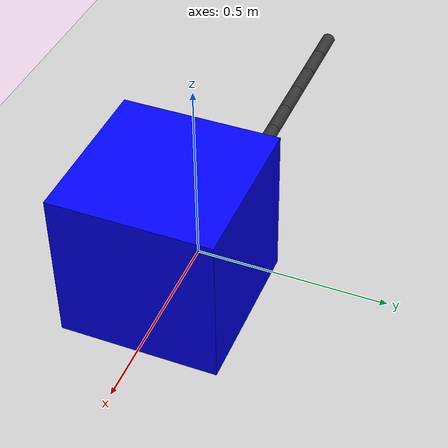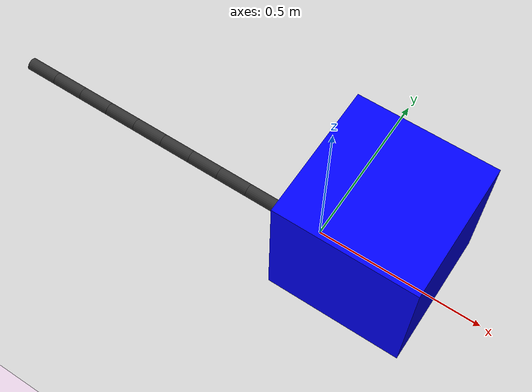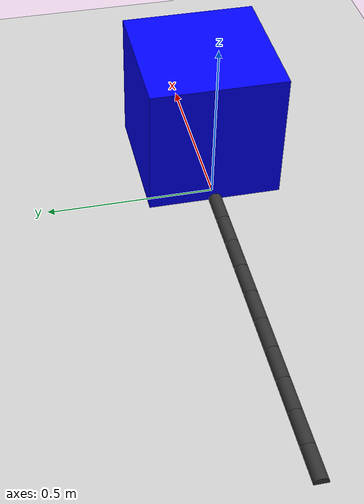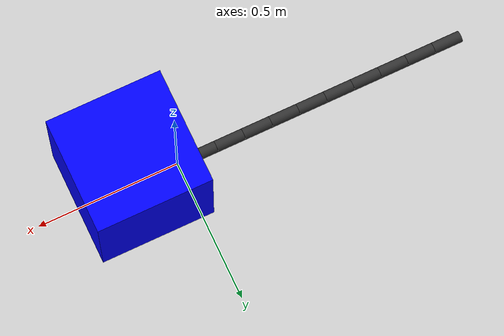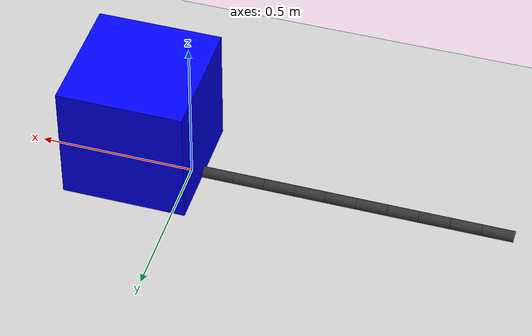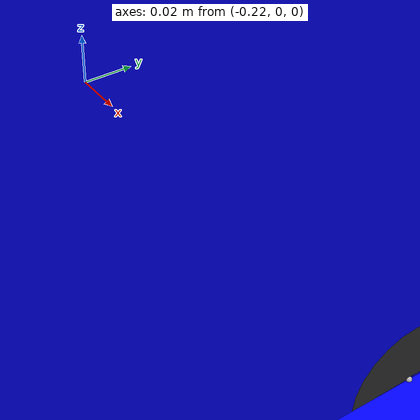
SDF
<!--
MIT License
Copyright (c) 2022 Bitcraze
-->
<sdf version="1.6">
 <world name="crazyflie_world">
  <physics name="1ms" type="ignored">
   <max_step_size>0.001</max_step_size>
   <real_time_factor>1.0</real_time_factor>
  </physics>
  <plugin filename="gz-sim-physics-system" name="gz::sim::systems::Physics"/>
  <plugin filename="gz-sim-user-commands-system" name="gz::sim::systems::UserCommands"/>
  <plugin filename="gz-sim-scene-broadcaster-system" name="gz::sim::systems::SceneBroadcaster"/>
  <plugin filename="gz-sim-sensors-system" name="gz::sim::systems::Sensors">
   <render_engine>ogre2</render_engine>
  </plugin>
  <light type="directional" name="sun">
   <pose>0 0 10 0 0 0</pose>
   <diffuse>0.8 0.8 0.8 1</diffuse>
   <specular>0.2 0.2 0.2 1</specular>
   <attenuation>
    <range>1000</range>
    <constant>0.9</constant>
    <linear>0.01</linear>
    <quadratic>0.001</quadratic>
   </attenuation>
   <direction>-0.5 0.1 -0.9</direction>
  </light>
  <model name="ground_plane">
   <static>true</static>
   <link name="link">
    <collision name="collision">
     <geometry><plane><normal>0 0 1</normal><size>100 100</size></plane></geometry>
    </collision>
    <visual name="visual">
     <geometry><plane><normal>0 0 1</normal><size>100 100</size></plane></geometry>
     <material>
      <ambient>0.8 0.8 0.8 1</ambient>
      <diffuse>0.8 0.8 0.8 1</diffuse>
      <specular>0.8 0.8 0.8 1</specular>
     </material>
    </visual>
   </link>
  </model>
  <include><uri>model://load</uri><name>the_load</name><pose>0.16 0 0 0 0 0</pose></include>
  <include><uri>model://small_segment</uri><name>segment_01</name><pose>-0.99 0 0 0 0 0</pose></include>
  <joint name="drone_to_cable_01" type="ball">
   <pose relative_to="crazyflie_01::hook_link">0 0 0 0 0 0</pose>
   <parent>crazyflie_01::hook_link</parent>
   <child>segment_01::segment_link</child>
   <axis><xyz>0 1 0</xyz></axis>
  </joint>
  <include><uri>model://small_segment</uri><name>segment_2</name><pose>-0.89 0 0 0 0 0</pose></include>
  <joint name="segment_01_to_2" type="ball">
   <pose relative_to="segment_01::segment_end">0 0 0 0 0 0</pose>
   <parent>segment_01::segment_end</parent>
   <child>segment_2::segment_link</child>
   <axis><xyz>0 1 0</xyz></axis>
  </joint>
  <include><uri>model://small_segment</uri><name>segment_3</name><pose>-0.79 0 0 0 0 0</pose></include>
  <joint name="segment_02_to_3" type="ball">
   <pose relative_to="segment_2::segment_end">0 0 0 0 0 0</pose>
   <parent>segment_2::segment_end</parent>
   <child>segment_3::segment_link</child>
   <axis><xyz>0 1 0</xyz></axis>
  </joint>
  <include><uri>model://small_segment</uri><name>segment_4</name><pose>-0.69 0 0 0 0 0</pose></include>
  <joint name="segment_3_to_4" type="ball">
   <pose relative_to="segment_3::segment_end">0 0 0 0 0 0</pose>
   <parent>segment_3::segment_end</parent>
   <child>segment_4::segment_link</child>
   <axis><xyz>0 1 0</xyz></axis>
  </joint>
  <include><uri>model://small_segment</uri><name>segment_5</name><pose>-0.59 0 0 0 0 0</pose></include>
  <joint name="segment_4_to_5" type="ball">
   <pose relative_to="segment_4::segment_end">0 0 0 0 0 0</pose>
   <parent>segment_4::segment_end</parent>
   <child>segment_5::segment_link</child>
   <axis><xyz>0 1 0</xyz></axis>
  </joint>
  <include><uri>model://small_segment</uri><name>segment_6</name><pose>-0.49 0 0 0 0 0</pose></include>
  <joint name="segment_5_to_6" type="ball">
   <pose relative_to="segment_5::segment_end">0 0 0 0 0 0</pose>
   <parent>segment_5::segment_end</parent>
   <child>segment_6::segment_link</child>
   <axis><xyz>0 1 0</xyz></axis>
  </joint>
  <include><uri>model://small_segment</uri><name>segment_7</name><pose>-0.39 0 0 0 0 0</pose></include>
  <joint name="segment_6_to_7" type="ball">
   <pose relative_to="segment_6::segment_end">0 0 0 0 0 0</pose>
   <parent>segment_6::segment_end</parent>
   <child>segment_7::segment_link</child>
   <axis><xyz>0 1 0</xyz></axis>
  </joint>
  <include><uri>model://small_segment</uri><name>segment_8</name><pose>-0.29 0 0 0 0 0</pose></include>
  <joint name="segment_7_to_8" type="ball">
   <pose relative_to="segment_7::segment_end">0 0 0 0 0 0</pose>
   <parent>segment_7::segment_end</parent>
   <child>segment_8::segment_link</child>
   <axis><xyz>0 1 0</xyz></axis>
  </joint>
  <include><uri>model://small_segment</uri><name>segment_9</name><pose>-0.19 0 0 0 0 0</pose></include>
  <joint name="segment_8_to_9" type="ball">
   <pose relative_to="segment_8::segment_end">0 0 0 0 0 0</pose>
   <parent>segment_8::segment_end</parent>
   <child>segment_9::segment_link</child>
   <axis><xyz>0 1 0</xyz></axis>
  </joint>
  <include><uri>model://small_segment</uri><name>segment_10</name><pose>-0.09 0 0 0 0 0</pose></include>
  <joint name="segment_9_to_10" type="ball">
   <pose relative_to="segment_9::segment_end">0 0 0 0 0 0</pose>
   <parent>segment_9::segment_end</parent>
   <child>segment_10::segment_link</child>
   <axis><xyz>0 1 0</xyz></axis>
  </joint>
  <joint name="cable_10_to_load" type="ball">
   <pose relative_to="segment_10::segment_end">0 0 0 0 0 0</pose>
   <parent>segment_10::segment_end</parent>
   <child>the_load::top_center_hook</child>
   <axis><xyz>0 1 0</xyz></axis>
  </joint>
 </world>
</sdf>

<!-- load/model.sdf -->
<sdf version="1.8">
<model name="load">
  <link name="box_body">
    <pose>0 0 0.2 0 0 0</pose>
      <inertial> <!--inertial properties of the link mass, inertia matix-->
        <mass>0.0001</mass>
        <inertia>
          <ixx>0.00000266</ixx>
          <ixy>0</ixy>
          <ixz>0</ixz>
          <iyy>0.00000266</iyy>
          <iyz>0</iyz>
          <izz>0.00000266</izz>
        </inertia>
      </inertial>
      <visual name='visual'>
        <geometry>
          <box>
            <size>0.4 0.4 0.4</size>
          </box>
        </geometry>
          <!--let's add color to our link-->
          <material>
            <ambient>0.0 0.0 1.0 1</ambient>
            <diffuse>0.0 0.0 1.0 1</diffuse>
            <specular>0.0 0.0 1.0 1</specular>
          </material>
      </visual>
      <collision name='collision'>
        <geometry>
          <box>
            <size>0.4 0.4 0.4</size>
          </box>
        </geometry>
      </collision>
    </link>
  <link name="top_center_hook">
    <pose>0 0 0.2 0 0 0</pose>
    <inertial>
      <mass>0.00001</mass>
        <inertia>
          <ixx>1e-9</ixx>
          <ixy>0</ixy>
          <ixz>0</ixz>
          <iyy>1e-9</iyy>
          <iyz>0</iyz>
          <izz>1e-9</izz>
        </inertia>
    </inertial>
    <visual name="hook_visual"><geometry><sphere><radius>0.005</radius></sphere></geometry></visual>
    <collision name="hook_collision"><geometry><sphere><radius>0.005</radius></sphere></geometry></collision>
  </link>
  <joint name="box_to_hook_joint" type="fixed">
    <parent>top_center_hook</parent>
    <child>box_body</child>
  </joint>

  <plugin
      filename="gz-sim-odometry-publisher-system"
      name="gz::sim::systems::OdometryPublisher">
      <odom_frame>odom</odom_frame>
      <dimensions>3</dimensions>
    </plugin>
</model>
</sdf>

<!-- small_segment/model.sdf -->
<sdf version="1.8">
  <model name="small_segment">
    <link name="segment_link">
      <inertial>
        <mass>0.00001</mass>
        <pose>0 0 0 0 1.5708 0</pose>
        <inertia>
            <ixx>1e-9</ixx>
            <iyy>1e-9</iyy>
            <izz>1e-9</izz>
        </inertia>
      </inertial>
      <visual name="segment_visual">
        <pose>0 0 0 0 1.5708 0</pose>
        <geometry>
          <cylinder>
            <radius>0.02</radius>
            <length>0.1</length> </cylinder>
        </geometry>
        <material>
          <ambient>0.2 0.2 0.2 1</ambient>
          <diffuse>0.2 0.2 0.2 1</diffuse>
          <specular>0.0 0.0 0.0 1</specular>
          <emissive>0.0 0.0 0.0 1</emissive>
        </material>
      </visual>
      <collision name="segment_collision">
        <pose>0 0 0 0 1.5708 0</pose>
        <geometry>
          <cylinder>
            <radius>0.02</radius>
            <length>0.1</length>
          </cylinder>
        </geometry>
      </collision>
    </link>
    <link name="segment_end">
        <pose>0.05 0 0 0 0 0</pose>
        <inertial>
          <mass>1e-9</mass>
          <inertia>
            <ixx>1e-9</ixx>
            <iyy>1e-9</iyy>
            <izz>1e-9</izz>
        </inertia>
        </inertial>
        <visual name="end_visual"><geometry><sphere><radius>0.001</radius></sphere></geometry></visual>
        <collision name="end_collision"><geometry><sphere><radius>0.001</radius></sphere></geometry></collision>
    </link>
    <joint name="end_joint" type="fixed">
        <parent>segment_link</parent>
        <child>segment_end</child>
    </joint>
  </model>
</sdf>
